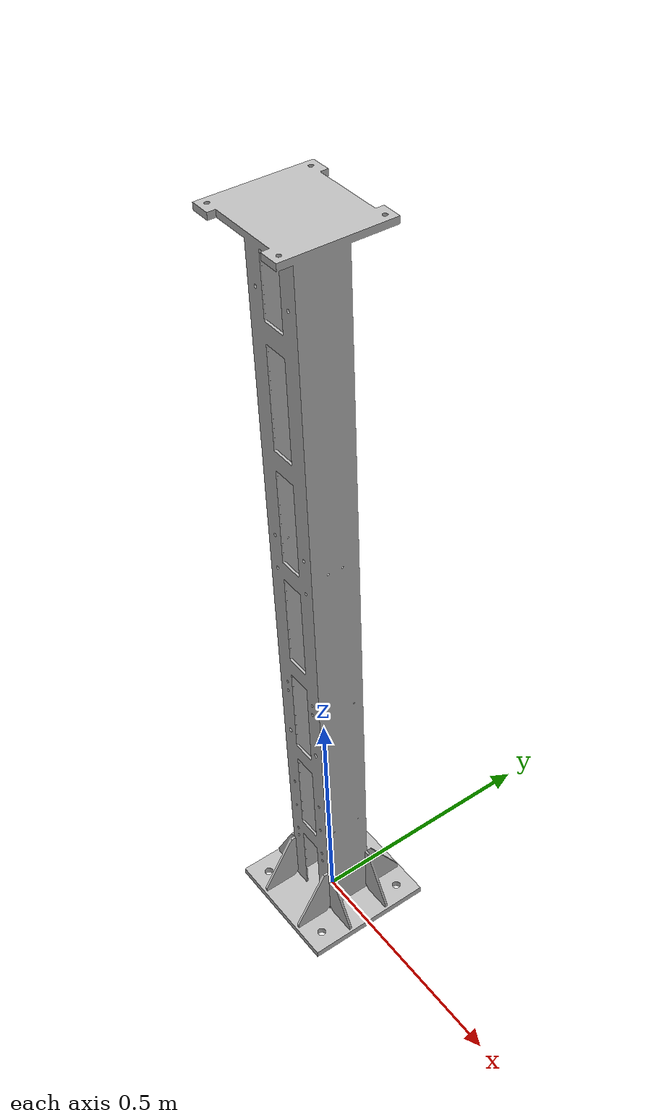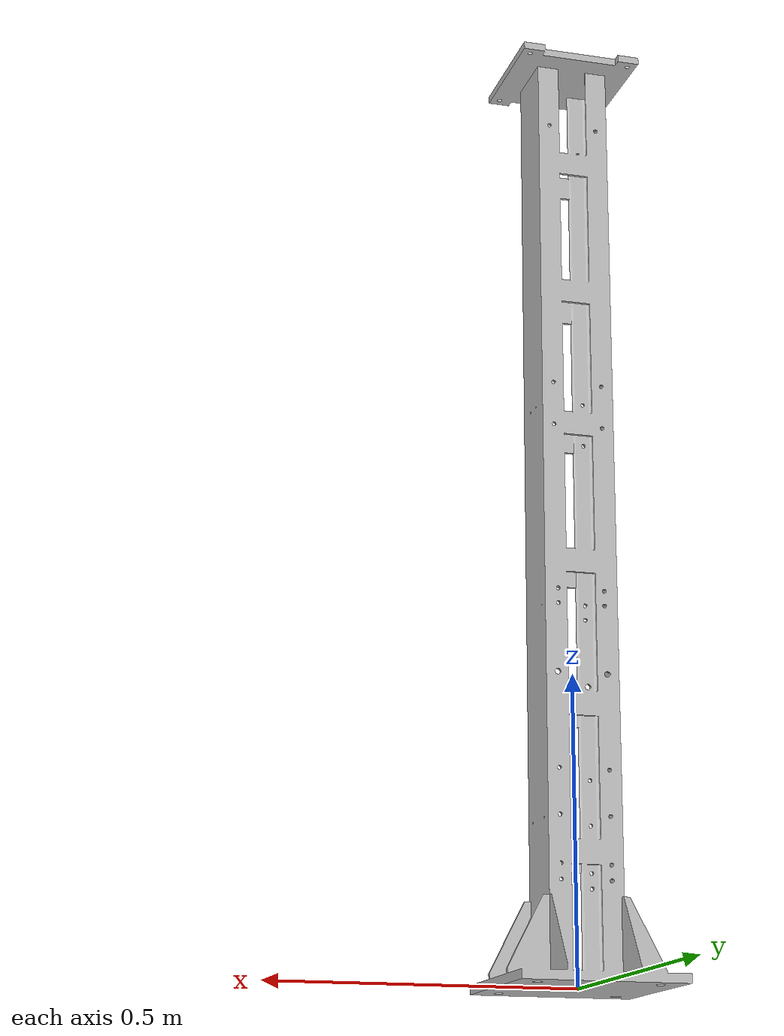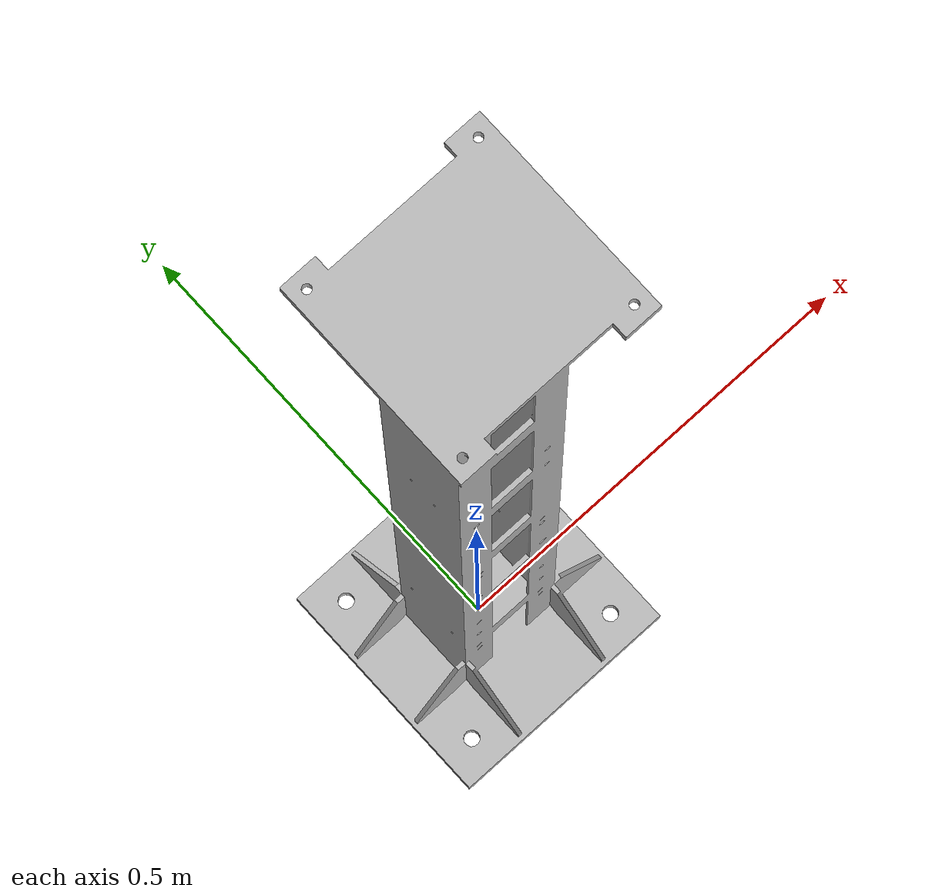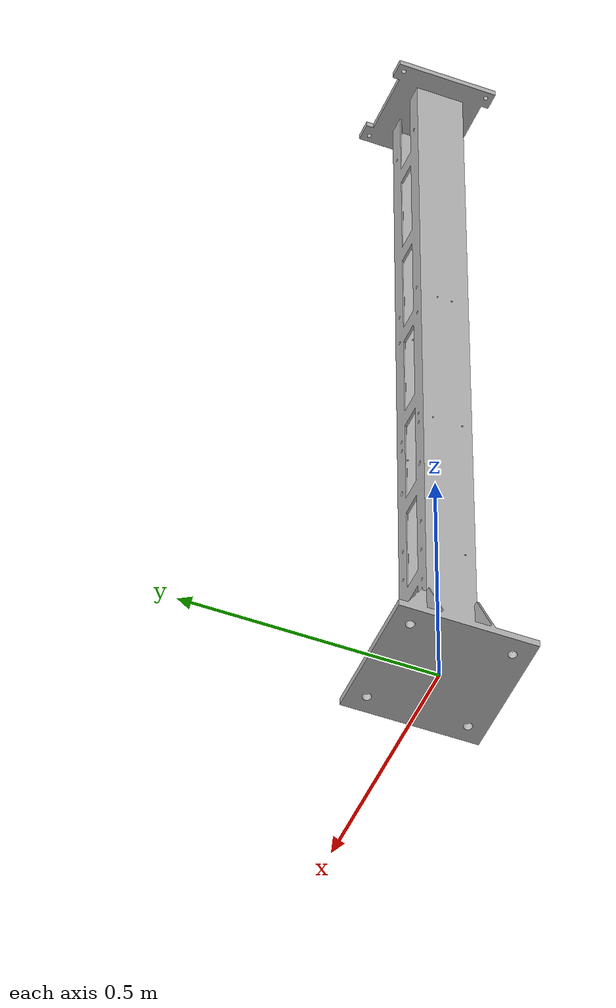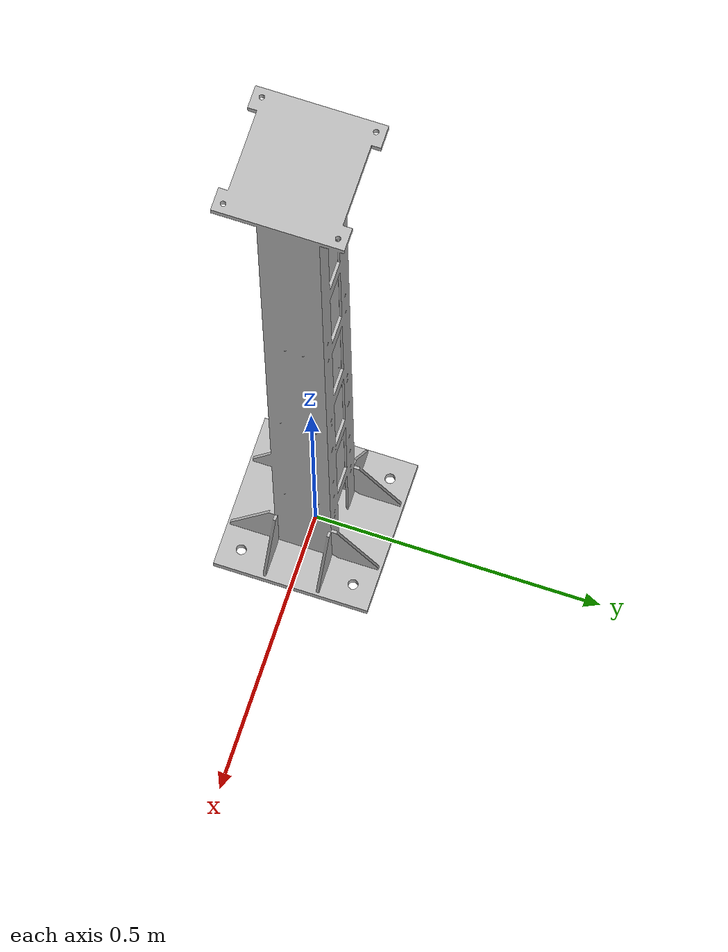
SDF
<?xml version='1.0'?>
<sdf version='1.4'>
  <model name="FGAG2000">
 <static>false</static>
 <link name="mesh_link">
	<inertial>
            <mass>100.0</mass>
 	</inertial>
        <visual name="visual">
        <geometry>
            <mesh><uri>model://FGAG2000/meshes/FGAG2000.stl</uri></mesh>
          </geometry>
        </visual>
        <collision name="collision">
          <geometry>
            <mesh><uri>model://FGAG2000/meshes/FGAG2000.stl</uri></mesh>
          </geometry>
        </collision>
      </link>
      <joint name='anchor' type='fixed'>
        <child>mesh_link</child>
        <parent>world</parent>
      </joint>
  </model>
</sdf>
